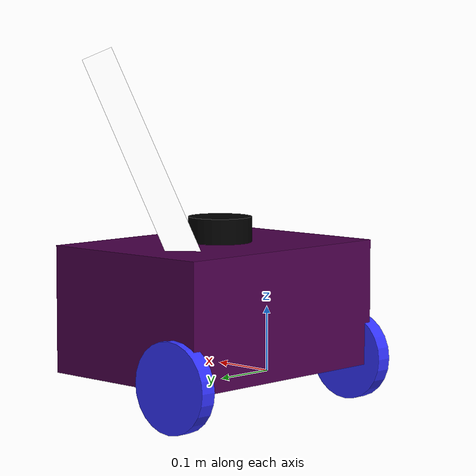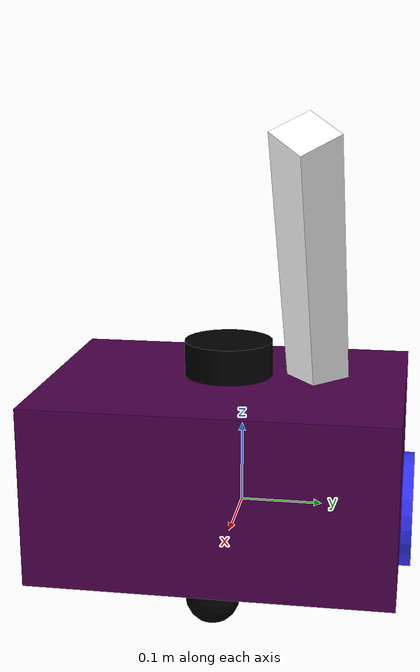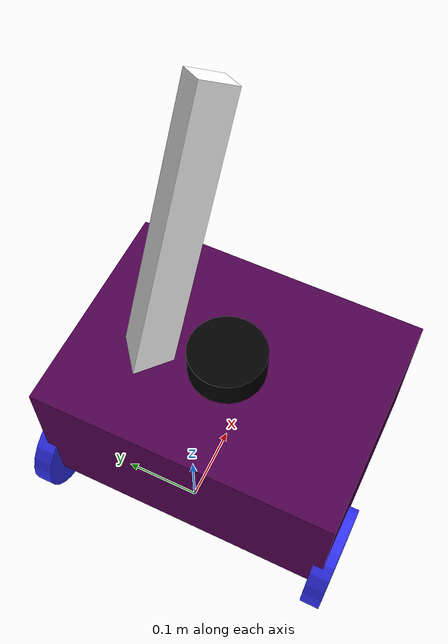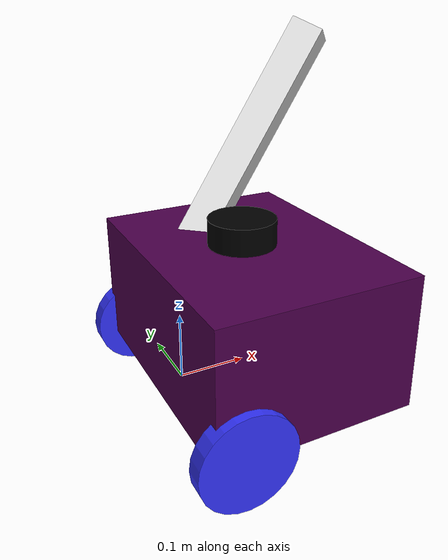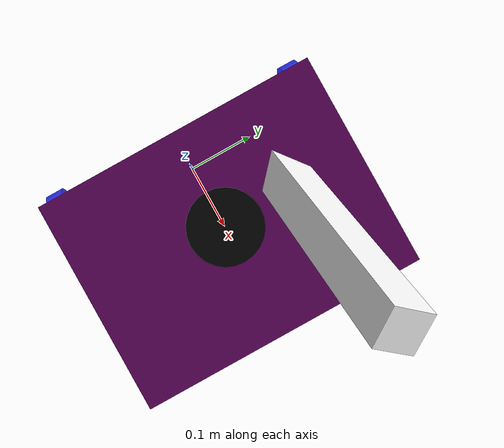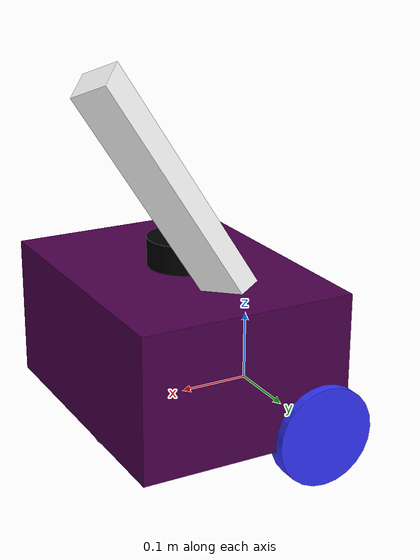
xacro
<?xml version="1.0" ?>
<robot name='robot' xmlns:xacro="http://ros.org/wiki/xacro">

    <xacro:property name="chassis_length" value="0.3"/>
    <xacro:property name="chassis_width" value="0.4"/>
    <xacro:property name="chassis_height" value="0.2"/>

    <xacro:property name="wheel_radius" value="0.07"/>
    <xacro:property name="wheel_thickness" value="0.026"/>
    <xacro:property name="wheel_mass" value="0.05"/>
    <xacro:property name="wheel_offset_x" value="0.04"/>
    <xacro:property name="wheel_offset_y" value="${chassis_width/2}"/>
    <xacro:property name="wheel_offset_z" value="0.01"/>

    <xacro:property name="caster_wheel_radius" value="0.03"/>
    <xacro:property name="caster_wheel_mass" value="0.5"/>
    <xacro:property name="caster_wheel_offset_x" value="0.25"/>
    <xacro:property name="caster_wheel_offset_z" value="${wheel_offset_z - caster_wheel_radius}"/>
    <xacro:property name="mass" value="1.0"/>

    <xacro:property name="tail_width" value="0.05"/>
    <xacro:property name="tail_lenght" value="0.4"/>
    <xacro:property name="tail_height" value="0.05"/>
    <xacro:property name="tail_angle_y" value="-1.0"/>
    <xacro:property name="tail_angle_x" value="0.75"/>
    <xacro:property name="tail_offset_x" value="${chassis_length-0.1}"/>
    <xacro:property name="tail_offset_y" value="${chassis_width/2-0.1}"/>
    <xacro:property name="tail_offset_z" value="${chassis_height+tail_lenght*0.42 -0.05}"/>
    <xacro:property name="tail_mass" value="0.001"/>

    <material name="white">
        <color rgba="1 1 1 1" />
    </material>

    <material name="orange">
        <color rgba="0.3 0 0.3 1"/>
    </material>

    <material name="blue">
        <color rgba="0.2 0.2 1 1"/>
    </material>

    <material name="black">
        <color rgba="0 0 0 1"/>
    </material>

    <material name="red">
        <color rgba="1 0 0 1"/>
    </material>

    <link name="base_link">
    </link>

    <link name="base_footprint">
    </link>

    <joint name="base_footprint_joint" type="fixed">
        <parent link="base_link"/>
        <child link="base_footprint"/>
        <origin xyz="0 0 -0.138" rpy="0 0 0"/>
    </joint>

    <joint name="chassis_joint" type="fixed">
        <parent link="base_link"/>
        <child link="chassis"/>
        <origin xyz="${-wheel_offset_x} 0 ${-wheel_offset_z}"/>
    </joint>

    <link name='chassis'>

        <inertial>
            <origin xyz="${chassis_length/2} 0 ${chassis_height/2}" rpy="0 0 0"/>
            <mass value="${mass}" />
            <inertia ixx="${(1/12) * mass * (chassis_width*chassis_width+chassis_height*chassis_height)}" ixy="0.0" ixz="0.0"
                    iyy="${(1/12) * mass * (chassis_length*chassis_length+chassis_height*chassis_height)}" iyz="0.0"
                    izz="${(1/12) * mass * (chassis_length*chassis_length+chassis_width*chassis_width)}" />
        </inertial>
        <visual>
            <origin xyz="${chassis_length/2} 0 ${chassis_height/2}"/>
            <geometry>
                <box size="${chassis_length} ${chassis_width} ${chassis_height}"/>
            </geometry>
            <material name="orange"/>
        </visual>
        <collision>
            <origin xyz="${chassis_length/2} 0 ${chassis_height/2}"/>
            <geometry>
                <box size="${chassis_length} ${chassis_width} ${chassis_height}"/>
            </geometry>
        </collision>
    </link>

    <gazebo reference="chassis">
        <material>Gazebo/Orange</material>
    </gazebo>

    <joint name="left_wheel_joint" type="continuous">
        <parent link="base_link"/>
        <child link="left_wheel"/>
        <origin xyz="0 ${wheel_offset_y} 0" rpy="-${pi/2} 0 0" />
        <axis xyz="0 0 1"/>
    </joint>

    <link name="left_wheel">
        <visual>
            <geometry>
                <cylinder radius="${wheel_radius}" length="${wheel_thickness}"/>
            </geometry>
            <material name="blue"/>
        </visual>
        <collision>
            <geometry>
                <cylinder radius="${wheel_radius}" length="${wheel_thickness}"/>
            </geometry>
        </collision>
        <inertial>
            <origin xyz="0 0 0" rpy="0 0 0"/>
            <mass value="${wheel_mass}" />
            <inertia ixx="${(1/12) * wheel_mass * (3*wheel_radius*wheel_radius + wheel_thickness*wheel_thickness)}" ixy="0.0" ixz="0.0"
                     iyy="${(1/12) * wheel_mass * (3*wheel_radius*wheel_radius + wheel_thickness*wheel_thickness)}" iyz="0.0"
                     izz="${(1/2) * wheel_mass * (wheel_radius*wheel_radius)}" />
        </inertial>
    </link>

    <gazebo reference="left_wheel">
        <material>Gazebo/Blue</material>
    </gazebo>

    <joint name="right_wheel_joint" type="continuous">
        <parent link="base_link"/>
        <child link="right_wheel"/>
        <origin xyz="0 ${-wheel_offset_y} 0" rpy="${pi/2} 0 0" />
        <axis xyz="0 0 -1"/>
    </joint>

    <link name="right_wheel">
        <visual>
            <geometry>
                <cylinder radius="${wheel_radius}" length="${wheel_thickness}"/>
            </geometry>
            <material name="blue"/>
        </visual>
        <collision>
            <geometry>
                <cylinder radius="${wheel_radius}" length="${wheel_thickness}"/>
            </geometry>
        </collision>
        <inertial>
            <origin xyz="0 0 0" rpy="0 0 0"/>
            <mass value="${wheel_mass}" />
            <inertia ixx="${(1/12) * wheel_mass * (3*wheel_radius*wheel_radius + wheel_thickness*wheel_thickness)}" ixy="0.0" ixz="0.0"
                     iyy="${(1/12) * wheel_mass * (3*wheel_radius*wheel_radius + wheel_thickness*wheel_thickness)}" iyz="0.0"
                     izz="${(1/2) * wheel_mass * (wheel_radius*wheel_radius)}" />
        </inertial>
    </link>

    <gazebo reference="right_wheel">
        <material>Gazebo/Blue</material>
    </gazebo>

    <joint name="caster_wheel_joint" type="fixed">
        <parent link="chassis"/>
        <child link="caster_wheel"/>
        <origin xyz="${caster_wheel_offset_x} 0 ${caster_wheel_offset_z}"/>
    </joint>

    <link name="caster_wheel">
        <visual>
            <geometry>
                <sphere radius="${caster_wheel_radius}"/>
            </geometry>
            <material name="black"/>
        </visual>
        <collision>
            <geometry>
                <sphere radius="${caster_wheel_radius}"/>
            </geometry>
        </collision>
        <inertial>
            <origin xyz="0 0 0" rpy="0 0 0"/>
            <mass value="${caster_wheel_mass}" />
            <inertia ixx="${(2/5) * caster_wheel_mass * (caster_wheel_radius*caster_wheel_radius)}" ixy="0.0" ixz="0.0"
                     iyy="${(2/5) * caster_wheel_mass * (caster_wheel_radius*caster_wheel_radius)}" iyz="0.0"
                     izz="${(2/5) * caster_wheel_mass * (caster_wheel_radius*caster_wheel_radius)}" />
        </inertial>
    </link>

    <gazebo reference="caster_wheel">
        <material>Gazebo/Black</material>
        <mu1 value="0.001"/>
        <mu2 value="0.001"/>
    </gazebo>

    <joint name="tail" type="fixed">
        <parent link="chassis"/>
        <child link="tail_link"/>
        <origin rpy="${tail_angle_x} ${tail_angle_y} 0" xyz="${tail_offset_x} ${tail_offset_y} ${tail_offset_z}"/>
    </joint>

    <link name="tail_link">
        <visual>
            <geometry>
                <box size="${tail_lenght} ${tail_width} ${tail_height}"/>
            </geometry>
            <material name="white"/>
        </visual>
        <collision>
            <geometry>
                <box size="${tail_lenght} ${tail_width} ${tail_height}"/>
            </geometry>
        </collision>
        <inertial>
            <origin xyz="0 0 0" rpy="0 0 0"/>
            <mass value="${tail_mass}" />
            <inertia ixx="${(1/12) * tail_mass * (tail_width*tail_width+tail_height*tail_height)}" ixy="0.0" ixz="0.0"
                     iyy="${(1/12) * tail_mass * (tail_lenght*tail_lenght+tail_height*tail_height)}" iyz="0.0"
                     izz="${(1/12) * tail_mass * (tail_lenght*tail_lenght+tail_width*tail_width)}" />
        </inertial>
    </link>

    <gazebo reference="tail_link">
        <material>Gazebo/White</material>
        <mu1 value="0.001"/>
        <mu2 value="0.001"/>
    </gazebo>

    <gazebo>

       <plugin
            filename="gz-sim-joint-state-publisher-system"
            name="gz::sim::systems::JointStatePublisher">
        </plugin>

        <plugin
            filename="gz-sim-diff-drive-system"
            name="gz::sim::systems::DiffDrive">
            <left_joint>left_wheel_joint</left_joint>
            <right_joint>right_wheel_joint</right_joint>
            <child_frame_id>robot/base_link</child_frame_id>
            <wheel_separation>0.291</wheel_separation>
            <wheel_radius>0.033</wheel_radius>
            <odom_publish_frequency>10</odom_publish_frequency>
        </plugin>

        <plugin filename="gz-sim-sensors-system"
                    name="gz::sim::systems::Sensors">
                <render_engine>ogre2</render_engine>
        </plugin>
    </gazebo>

    <!-- LIDAR -->

    <joint name="laser_joint" type="fixed">
        <parent link="base_link"/>
        <child link="laser_frame"/>
        <origin xyz="0.1 0 0.212" rpy="0 0 0"/>
    </joint>

    <link name="laser_frame">
        <visual>
            <geometry>
                <cylinder radius="0.05" length="0.04"/>
            </geometry>
            <material name="black"/>
        </visual>
        <visual>
            <origin xyz="0 0 -0.05"/>
            <geometry>
                <cylinder radius="0.01" length="0.1"/>
            </geometry>
            <material name="black"/>
        </visual>
        <collision>
            <geometry>
                <cylinder radius="0.05" length="0.04"/>
            </geometry>
        </collision>
        <inertial>
            <origin xyz="0 0 0" rpy="0 0 0"/>
            <mass value="0.1" />
            <inertia ixx="${(1/12) * 0.1 * (3*0.05*0.05 + 0.04*0.04)}" ixy="0.0" ixz="0.0"
                     iyy="${(1/12) * 0.1 * (3*0.05*0.05 + 0.04*0.04)}" iyz="0.0"
                     izz="${(1/2) * 0.1 * (0.05*0.05)}" />
        </inertial>
    </link>

    <gazebo reference="laser_frame">
        <material>Gazebo/Black</material>

        <sensor name='laser_sensor_frame' type='gpu_lidar'>"
            <gz_frame_id>robot/laser_frame</gz_frame_id>
            <pose> 0 0 0 0 0 0 </pose>
            <visualize>true</visualize>
            <always_on>true</always_on>
            <update_rate>10</update_rate>
            <ray>
                <scan>
                    <horizontal>
                        <samples>360</samples>
                        <min_angle>-3.14</min_angle>
                        <max_angle>3.14</max_angle>
                    </horizontal>
                </scan>
                <range>
                    <min>0.3</min>
                    <max>12</max>
                </range>
                <noise>
                    <type>gaussian</type>
                    <mean>0.0</mean>
                    <stddev>0.007</stddev>
                </noise>
            </ray>
        </sensor>
    </gazebo>
    <!-- END LIDAR -->

</robot>
